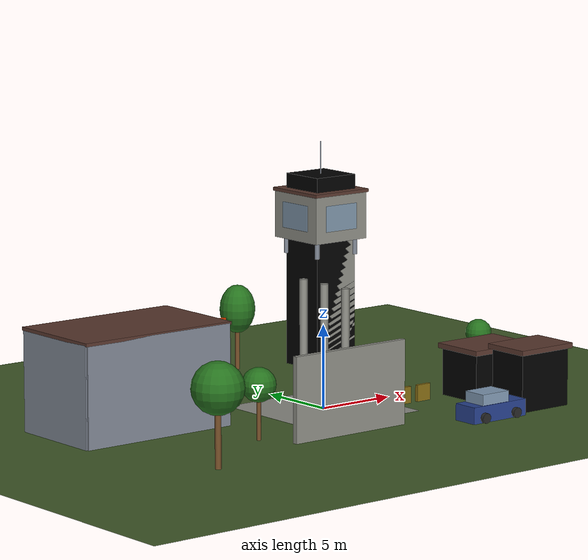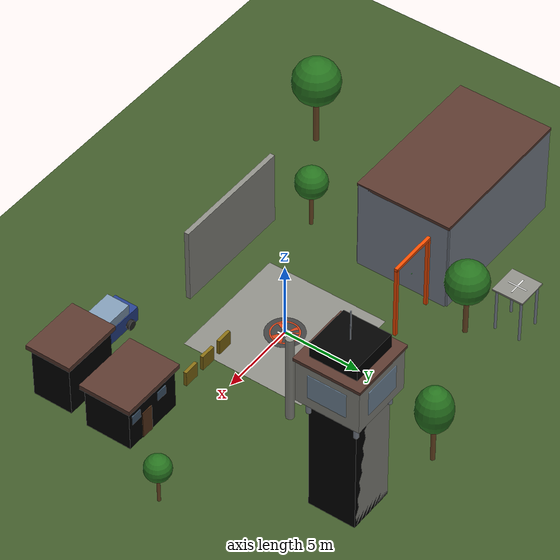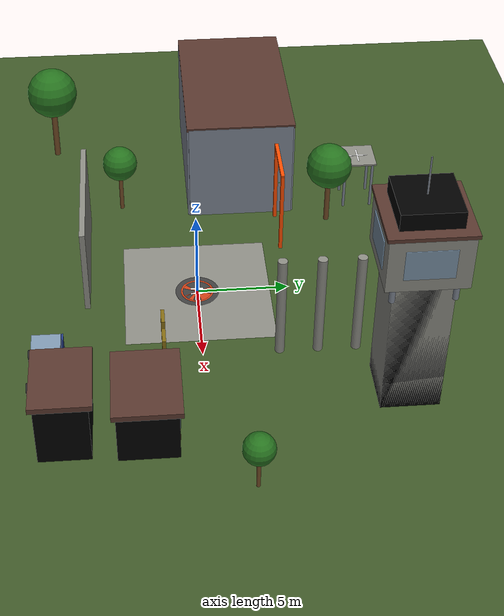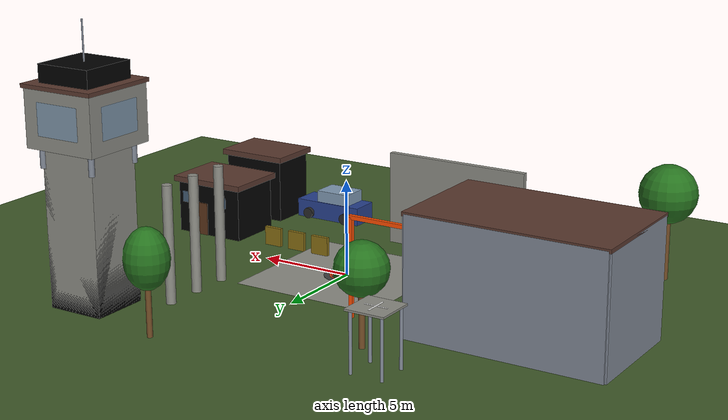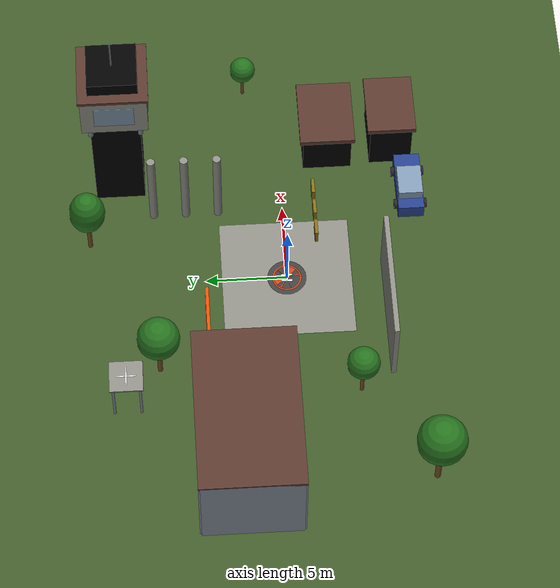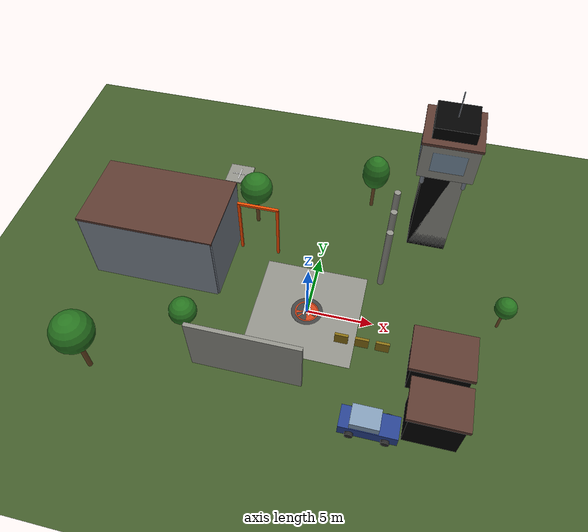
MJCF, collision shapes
<mujoco model="mujoco_drones">

  <!-- Compiler settings (apply globally to all included files)     -->
  <compiler angle="radian" meshdir="../meshes"/>

  <!-- Physics options                                              -->
  <option timestep="0.001" gravity="0 0 -9.81" integrator="RK4"
          cone="pyramidal" impratio="2">
    <flag contact="enable" warmstart="enable"/>
  </option>

  <!-- Solver tuning                                                -->
  <size nconmax="256" njmax="512"/>

  <!-- Visual settings                                              -->
  <visual>
    <headlight diffuse="0.5 0.5 0.5" ambient="0.2 0.2 0.2" specular="0.1 0.1 0.1"/>
    <rgba fog="0.65 0.72 0.82 1"/>
    <map znear="0.01" zfar="500" fogstart="30" fogend="120"
         shadowscale="0.5" force="0.02"/>
    <quality shadowsize="4096"/>
  </visual>

  <!-- Defaults (inherited by all geoms/joints unless overridden)   -->
  <default>
    <joint damping="0.0005"/>
    <geom contype="1" conaffinity="1" condim="3" friction="1 0.5 0.1"/>
  </default>

  <!-- Lighting (global scene lights)                               -->
  <worldbody>
    <!-- Sun: high directional -->
    <light name="sun" directional="true"
           diffuse="0.9 0.87 0.8" specular="0.4 0.38 0.35"
           pos="0 0 20" dir="-0.3 -0.4 -1" castshadow="true"/>

    <!-- Fill light: softer, from the side -->
    <light name="fill" directional="true"
           diffuse="0.35 0.4 0.5" specular="0.05 0.05 0.08"
           pos="15 15 10" dir="-0.5 -0.5 -0.7" castshadow="false"/>

    <!-- Sky hemisphere approximation -->
    <light name="sky" directional="true"
           diffuse="0.25 0.3 0.4" specular="0 0 0"
           pos="0 0 20" dir="0 0 -1" castshadow="false"/>
  </worldbody>

  <!-- Include drone and environment                                -->
  <include file="hummingbird.xml"/>
  <include file="environment.xml"/>

</mujoco>

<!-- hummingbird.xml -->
<mujoco model="hummingbird">

  <asset>
    <mesh name="body" file="hummingbird.obj" scale="1 1 1"/>
    <mesh name="prop_cw"  file="propeller_cw.obj"  scale="0.1 0.1 0.1"/>
    <mesh name="prop_ccw" file="propeller_ccw.obj" scale="0.1 0.1 0.1"/>
  </asset>

  <worldbody>
    <body name="base_link" pos="0 0 1.0">
      <freejoint name="root"/>

      <site name="imu_site" pos="0 0 0" size="0.005"/>

      <!-- LiDAR: horizontal scan plane at drone center -->
      <site name="lidar_site" pos="0 0 -0.02" size="0.005" rgba="0 1 0 0.3"/>

      <!-- Infrared rangefinder: bottom of body, pointing down (-Z) -->
      <site name="infrared_site" pos="0 0 -0.06" euler="180 0 0"
            size="0.003" rgba="1 0 0 0.3"/>

      <!-- Forward-facing RGBD camera -->
      <camera name="drone_camera" pos="0.085 0.085 -0.02"
              xyaxes="0 -1 0 0 0 1" fovy="60"/>

      <inertial pos="0 0 0" mass="0.68"
                diaginertia="0.007 0.007 0.012"/>

      <geom name="body_visual" type="mesh" mesh="body"
            contype="0" conaffinity="0" rgba="0.3 0.3 0.3 1"/>
      <geom name="body_collision" type="box" size="0.05 0.05 0.06"
            rgba="0.3 0.3 0.3 0" mass="0"/>

      <!-- Rotor 0: Front (+X), CW -->
      <body name="rotor_0" pos="0.17 0 0.01">
        <joint name="rotor_0_joint" type="hinge" axis="0 0 1"
               damping="0.00005" frictionloss="0.0001"/>
        <inertial pos="0 0 0" mass="0.009"
                  diaginertia="7.669e-06 7.507e-06 1.755e-07"/>
        <geom name="prop_0" type="mesh" mesh="prop_cw"
              contype="0" conaffinity="0" rgba="1.0 0.2 0.2 0.6"/>
        <site name="thrust_0" pos="0 0 0" size="0.005"/>
      </body>

      <!-- Rotor 1: Left (+Y), CCW -->
      <body name="rotor_1" pos="0 0.17 0.01">
        <joint name="rotor_1_joint" type="hinge" axis="0 0 1"
               damping="0.00005" frictionloss="0.0001"/>
        <inertial pos="0 0 0" mass="0.009"
                  diaginertia="7.669e-06 7.507e-06 1.755e-07"/>
        <geom name="prop_1" type="mesh" mesh="prop_ccw"
              contype="0" conaffinity="0" rgba="0.2 0.4 1.0 0.6"/>
        <site name="thrust_1" pos="0 0 0" size="0.005"/>
      </body>

      <!-- Rotor 2: Back (-X), CW -->
      <body name="rotor_2" pos="-0.17 0 0.01">
        <joint name="rotor_2_joint" type="hinge" axis="0 0 1"
               damping="0.00005" frictionloss="0.0001"/>
        <inertial pos="0 0 0" mass="0.009"
                  diaginertia="7.669e-06 7.507e-06 1.755e-07"/>
        <geom name="prop_2" type="mesh" mesh="prop_cw"
              contype="0" conaffinity="0" rgba="0.2 0.4 1.0 0.6"/>
        <site name="thrust_2" pos="0 0 0" size="0.005"/>
      </body>

      <!-- Rotor 3: Right (-Y), CCW -->
      <body name="rotor_3" pos="0 -0.17 0.01">
        <joint name="rotor_3_joint" type="hinge" axis="0 0 1"
               damping="0.00005" frictionloss="0.0001"/>
        <inertial pos="0 0 0" mass="0.009"
                  diaginertia="7.669e-06 7.507e-06 1.755e-07"/>
        <geom name="prop_3" type="mesh" mesh="prop_ccw"
              contype="0" conaffinity="0" rgba="0.2 0.4 1.0 0.6"/>
        <site name="thrust_3" pos="0 0 0" size="0.005"/>
      </body>
    </body>
  </worldbody>

  <actuator>
    <general name="thrust_0" site="thrust_0"
             gear="0 0 1 0 0 -0.016" ctrlrange="0 6" ctrllimited="true"/>
    <general name="thrust_1" site="thrust_1"
             gear="0 0 1 0 0  0.016" ctrlrange="0 6" ctrllimited="true"/>
    <general name="thrust_2" site="thrust_2"
             gear="0 0 1 0 0 -0.016" ctrlrange="0 6" ctrllimited="true"/>
    <general name="thrust_3" site="thrust_3"
             gear="0 0 1 0 0  0.016" ctrlrange="0 6" ctrllimited="true"/>

    <velocity name="spin_0" joint="rotor_0_joint" kv="0.0001"
              ctrlrange="-838 0" ctrllimited="true"/>
    <velocity name="spin_1" joint="rotor_1_joint" kv="0.0001"
              ctrlrange="0 838" ctrllimited="true"/>
    <velocity name="spin_2" joint="rotor_2_joint" kv="0.0001"
              ctrlrange="-838 0" ctrllimited="true"/>
    <velocity name="spin_3" joint="rotor_3_joint" kv="0.0001"
              ctrlrange="0 838" ctrllimited="true"/>
  </actuator>

  <sensor>
    <accelerometer name="imu_accel" site="imu_site"/>
    <gyro          name="imu_gyro"  site="imu_site"/>
    <framequat     name="orientation" objtype="site" objname="imu_site"/>
    <framepos      name="position"   objtype="site" objname="imu_site"/>
    <framexaxis    name="heading"    objtype="site" objname="imu_site"/>
    <velocimeter   name="linvel"     site="imu_site"/>
    <!-- Magnetometer axes (3-axis heading reference) -->
    <frameyaxis    name="mag_y"      objtype="site" objname="imu_site"/>
    <framezaxis    name="mag_z"      objtype="site" objname="imu_site"/>
  </sensor>

</mujoco>

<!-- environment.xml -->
E (+X)

  Origin (0,0) = landing pad center = drone spawn
-->
<mujoco model="environment">

  <!-- Asset store: textures and materials for the environment      -->
  <asset>
    <!-- Ground -->
    <texture name="ground_grass" type="2d" builtin="checker"
             rgb1="0.28 0.38 0.18" rgb2="0.22 0.32 0.14"
             width="512" height="512" mark="random" markrgb="0.25 0.35 0.16"/>
    <material name="mat_grass" texture="ground_grass" texrepeat="20 20"
              reflectance="0.05" specular="0.05"/>

    <!-- Concrete / asphalt -->
    <texture name="tex_concrete" type="2d" builtin="flat"
             rgb1="0.55 0.55 0.52" rgb2="0.50 0.50 0.48"
             width="256" height="256" mark="random" markrgb="0.48 0.48 0.46"/>
    <material name="mat_concrete" texture="tex_concrete" texrepeat="4 4"
              reflectance="0.1" specular="0.1"/>

    <!-- Landing pad -->
    <texture name="tex_pad" type="2d" builtin="flat"
             rgb1="0.25 0.25 0.25" rgb2="0.20 0.20 0.20"
             width="256" height="256"/>
    <material name="mat_pad" texture="tex_pad" texrepeat="1 1"
              reflectance="0.15" specular="0.2"/>

    <!-- Building walls -->
    <texture name="tex_brick" type="2d" builtin="checker"
             rgb1="0.65 0.35 0.25" rgb2="0.60 0.32 0.22"
             width="128" height="128"/>
    <material name="mat_brick" texture="tex_brick" texrepeat="8 4"
              reflectance="0.05"/>

    <texture name="tex_metal" type="2d" builtin="flat"
             rgb1="0.50 0.53 0.58" rgb2="0.45 0.48 0.52"
             width="128" height="128" mark="random" markrgb="0.42 0.44 0.48"/>
    <material name="mat_metal" texture="tex_metal" texrepeat="6 6"
              reflectance="0.3" specular="0.3"/>

    <!-- Roof -->
    <texture name="tex_roof" type="2d" builtin="flat"
             rgb1="0.35 0.22 0.18" rgb2="0.30 0.18 0.14"
             width="128" height="128"/>
    <material name="mat_roof" texture="tex_roof" texrepeat="4 4"
              reflectance="0.05"/>

    <!-- Barrier (yellow/black) -->
    <texture name="tex_barrier" type="2d" builtin="checker"
             rgb1="0.9 0.7 0.0" rgb2="0.15 0.15 0.15"
             width="64" height="64"/>
    <material name="mat_barrier" texture="tex_barrier" texrepeat="4 1"
              reflectance="0.1"/>

    <!-- Foliage -->
    <material name="mat_trunk"   rgba="0.45 0.30 0.15 1" specular="0.05"/>
    <material name="mat_foliage" rgba="0.15 0.45 0.12 0.9" specular="0.05"/>

    <!-- Window -->
    <material name="mat_window" rgba="0.5 0.65 0.8 0.6" specular="0.6"
              reflectance="0.4"/>

    <!-- Landing pad markings -->
    <material name="mat_marking" rgba="1.0 1.0 1.0 0.9"/>
    <material name="mat_circle"  rgba="1.0 0.3 0.1 0.8"/>
  </asset>

  <worldbody>

    <!-- Ground plane                                                 -->
    <geom name="ground" type="plane" size="50 50 0.1"
          material="mat_grass" contype="1" conaffinity="1"/>

    <!-- Concrete apron around landing area -->
    <geom name="apron" type="box" pos="0 0 0.001" size="4 4 0.001"
          material="mat_concrete" contype="1" conaffinity="1"/>

    <!-- Landing Pad (centered at origin)                             -->
    <!-- Visual-only markings on top of the apron.                    -->
    <body name="landing_pad" pos="0 0 0.003">
      <!-- Pad surface -->
      <geom name="pad_base" type="cylinder" size="1.2 0.002"
            material="mat_pad" contype="0" conaffinity="0"/>

      <!-- Circle marking -->
      <geom name="pad_ring" type="cylinder" size="0.9 0.003" pos="0 0 0.001"
            material="mat_circle" contype="0" conaffinity="0"/>
      <geom name="pad_inner" type="cylinder" size="0.8 0.003" pos="0 0 0.001"
            material="mat_pad" contype="0" conaffinity="0"/>

      <!-- "H" marking (two vertical bars + crossbar) -->
      <geom name="h_left"  type="box" size="0.06 0.35 0.003" pos="-0.2 0 0.002"
            material="mat_marking" contype="0" conaffinity="0"/>
      <geom name="h_right" type="box" size="0.06 0.35 0.003" pos="0.2 0 0.002"
            material="mat_marking" contype="0" conaffinity="0"/>
      <geom name="h_cross" type="box" size="0.2 0.06 0.003" pos="0 0 0.002"
            material="mat_marking" contype="0" conaffinity="0"/>

      <!-- Directional arrow (points +X = North on pad) -->
      <geom name="arrow_shaft" type="box" size="0.03 0.25 0.003" pos="0 0.55 0.002"
            material="mat_marking" contype="0" conaffinity="0"/>
      <site name="pad_center" pos="0 0 0.01" size="0.02" rgba="1 0 0 0"/>
    </body>

    <!-- Warehouse (large metal building, west side)                  -->
    <!-- Collision = one box.  Visual = walls + roof.                 -->
    <body name="warehouse" pos="-12 3 0">
      <!-- Collision hull (single box, invisible) -->
      <geom name="warehouse_col" type="box" size="5 3 3" pos="0 0 3"
            contype="1" conaffinity="1" rgba="0 0 0 0"/>

      <!-- Visual walls -->
      <geom name="wh_front" type="box" size="5 0.1 3" pos="0 3 3"
            material="mat_metal" contype="0" conaffinity="0"/>
      <geom name="wh_back" type="box" size="5 0.1 3" pos="0 -3 3"
            material="mat_metal" contype="0" conaffinity="0"/>
      <geom name="wh_left" type="box" size="0.1 3 3" pos="-5 0 3"
            material="mat_metal" contype="0" conaffinity="0"/>
      <geom name="wh_right" type="box" size="0.1 3 3" pos="5 0 3"
            material="mat_metal" contype="0" conaffinity="0"/>
      <!-- Roof -->
      <geom name="wh_roof" type="box" size="5.1 3.1 0.1" pos="0 0 6"
            material="mat_roof" contype="0" conaffinity="0"/>
    </body>

    <!-- Control Tower (tall narrow, northeast)                       -->
    <body name="tower" pos="8 10 0">
      <!-- Collision hull -->
      <geom name="tower_col" type="box" size="1.5 1.5 6" pos="0 0 6"
            contype="1" conaffinity="1" rgba="0 0 0 0"/>

      <!-- Base structure -->
      <geom name="tower_base" type="box" size="1.5 1.5 4" pos="0 0 4"
            material="mat_concrete" contype="0" conaffinity="0"/>

      <!-- Observation deck (wider) -->
      <geom name="tower_deck" type="box" size="2.0 2.0 1.5" pos="0 0 9.5"
            material="mat_concrete" contype="0" conaffinity="0"/>

      <!-- Deck supports -->
      <geom name="tower_support_1" type="cylinder" size="0.15 1" pos="1.5 1.5 8"
            material="mat_metal" contype="0" conaffinity="0"/>
      <geom name="tower_support_2" type="cylinder" size="0.15 1" pos="-1.5 1.5 8"
            material="mat_metal" contype="0" conaffinity="0"/>
      <geom name="tower_support_3" type="cylinder" size="0.15 1" pos="1.5 -1.5 8"
            material="mat_metal" contype="0" conaffinity="0"/>
      <geom name="tower_support_4" type="cylinder" size="0.15 1" pos="-1.5 -1.5 8"
            material="mat_metal" contype="0" conaffinity="0"/>

      <!-- Windows (glass) -->
      <geom name="tower_win_n" type="box" size="1.2 0.05 0.8" pos="0 2.0 9.5"
            material="mat_window" contype="0" conaffinity="0"/>
      <geom name="tower_win_s" type="box" size="1.2 0.05 0.8" pos="0 -2.0 9.5"
            material="mat_window" contype="0" conaffinity="0"/>
      <geom name="tower_win_e" type="box" size="0.05 1.2 0.8" pos="2.0 0 9.5"
            material="mat_window" contype="0" conaffinity="0"/>
      <geom name="tower_win_w" type="box" size="0.05 1.2 0.8" pos="-2.0 0 9.5"
            material="mat_window" contype="0" conaffinity="0"/>

      <!-- Roof -->
      <geom name="tower_roof" type="box" size="2.1 2.1 0.1" pos="0 0 11"
            material="mat_roof" contype="0" conaffinity="0"/>

      <!-- Antenna -->
      <geom name="antenna" type="cylinder" size="0.04 1.5" pos="0 0 12.5"
            material="mat_metal" contype="0" conaffinity="0"/>
    </body>

    <!-- Houses (two small residential buildings, east side)          -->
    <body name="house_1" pos="10 -3 0">
      <geom name="house1_col" type="box" size="2 1.5 1.5" pos="0 0 1.5"
            contype="1" conaffinity="1" rgba="0 0 0 0"/>
      <geom name="house1_walls" type="box" size="2 1.5 1.5" pos="0 0 1.5"
            material="mat_brick" contype="0" conaffinity="0"/>
      <geom name="house1_roof" type="box" size="2.2 1.7 0.15" pos="0 0 3.0"
            material="mat_roof" contype="0" conaffinity="0"/>
      <!-- Door -->
      <geom name="house1_door" type="box" size="0.4 0.05 0.9" pos="0.5 1.5 0.9"
            rgba="0.35 0.2 0.1 1" contype="0" conaffinity="0"/>
      <!-- Windows -->
      <geom name="house1_win1" type="box" size="0.35 0.05 0.3" pos="-0.8 1.5 2.0"
            material="mat_window" contype="0" conaffinity="0"/>
      <geom name="house1_win2" type="box" size="0.35 0.05 0.3" pos="1.4 1.5 2.0"
            material="mat_window" contype="0" conaffinity="0"/>
    </body>

    <body name="house_2" pos="10 -7 0">
      <geom name="house2_col" type="box" size="1.8 1.3 1.8" pos="0 0 1.8"
            contype="1" conaffinity="1" rgba="0 0 0 0"/>
      <geom name="house2_walls" type="box" size="1.8 1.3 1.8" pos="0 0 1.8"
            material="mat_brick" contype="0" conaffinity="0"/>
      <geom name="house2_roof" type="box" size="2.0 1.5 0.15" pos="0 0 3.6"
            material="mat_roof" contype="0" conaffinity="0"/>
    </body>

    <!-- Barriers (yellow/black, obstruction course near pad)         -->
    <body name="barriers" pos="3 -2 0">
      <geom name="barrier_1" type="box" size="0.5 0.1 0.5" pos="0 0 0.5"
            material="mat_barrier" contype="1" conaffinity="1"/>
      <geom name="barrier_2" type="box" size="0.5 0.1 0.5" pos="1.5 0 0.5"
            material="mat_barrier" contype="1" conaffinity="1"/>
      <geom name="barrier_3" type="box" size="0.5 0.1 0.5" pos="3.0 0 0.5"
            material="mat_barrier" contype="1" conaffinity="1"/>
    </body>

    <!-- Tall barrier wall (fly-over challenge) -->
    <body name="wall" pos="-3 -6 0">
      <geom name="wall_main" type="box" size="4 0.15 2.5" pos="0 0 2.5"
            material="mat_concrete" contype="1" conaffinity="1"/>
    </body>

    <!-- Pillars / columns (fly-between course)                       -->
    <body name="pillar_1" pos="5 4 0">
      <geom name="pillar1" type="cylinder" size="0.25 3" pos="0 0 3"
            material="mat_concrete" contype="1" conaffinity="1"/>
    </body>
    <body name="pillar_2" pos="5 6 0">
      <geom name="pillar2" type="cylinder" size="0.25 3" pos="0 0 3"
            material="mat_concrete" contype="1" conaffinity="1"/>
    </body>
    <body name="pillar_3" pos="5 8 0">
      <geom name="pillar3" type="cylinder" size="0.25 3" pos="0 0 3"
            material="mat_concrete" contype="1" conaffinity="1"/>
    </body>

    <!-- Gate (fly-through) -->
    <body name="gate" pos="-5 5 0">
      <geom name="gate_left" type="box" size="0.1 0.1 2.5" pos="-1.5 0 2.5"
            rgba="1.0 0.3 0.0 1" contype="1" conaffinity="1"/>
      <geom name="gate_right" type="box" size="0.1 0.1 2.5" pos="1.5 0 2.5"
            rgba="1.0 0.3 0.0 1" contype="1" conaffinity="1"/>
      <geom name="gate_top" type="box" size="1.6 0.1 0.1" pos="0 0 5.0"
            rgba="1.0 0.3 0.0 1" contype="1" conaffinity="1"/>
      <site name="gate_center" pos="0 0 3.5" size="0.03" rgba="0 1 0 0.5"/>
    </body>

    <!-- Trees (visual only, no collision — the drone flies through)  -->
    <body name="tree_1" pos="-8 -4 0">
      <geom name="trunk_1" type="cylinder" size="0.12 1.2" pos="0 0 1.2"
            material="mat_trunk" contype="0" conaffinity="0"/>
      <geom name="leaves_1" type="sphere" size="1.0" pos="0 0 3.2"
            material="mat_foliage" contype="0" conaffinity="0"/>
    </body>

    <body name="tree_2" pos="-6 8 0">
      <geom name="trunk_2" type="cylinder" size="0.15 1.5" pos="0 0 1.5"
            material="mat_trunk" contype="0" conaffinity="0"/>
      <geom name="leaves_2" type="sphere" size="1.3" pos="0 0 3.8"
            material="mat_foliage" contype="0" conaffinity="0"/>
    </body>

    <body name="tree_3" pos="14 2 0">
      <geom name="trunk_3" type="cylinder" size="0.1 1.0" pos="0 0 1.0"
            material="mat_trunk" contype="0" conaffinity="0"/>
      <geom name="leaves_3" type="sphere" size="0.8" pos="0 0 2.5"
            material="mat_foliage" contype="0" conaffinity="0"/>
    </body>

    <body name="tree_4" pos="3 12 0">
      <geom name="trunk_4" type="cylinder" size="0.14 1.4" pos="0 0 1.4"
            material="mat_trunk" contype="0" conaffinity="0"/>
      <geom name="leaves_4" type="ellipsoid" size="1.1 1.1 1.5" pos="0 0 3.8"
            material="mat_foliage" contype="0" conaffinity="0"/>
    </body>

    <body name="tree_5" pos="-14 -8 0">
      <geom name="trunk_5" type="cylinder" size="0.18 1.8" pos="0 0 1.8"
            material="mat_trunk" contype="0" conaffinity="0"/>
      <geom name="leaves_5" type="sphere" size="1.5" pos="0 0 4.5"
            material="mat_foliage" contype="0" conaffinity="0"/>
    </body>

    <!-- Parked vehicle (simple box car, southeast)                   -->
    <body name="car" pos="6 -8 0">
      <!-- Chassis -->
      <geom name="car_body" type="box" size="2.0 0.8 0.5" pos="0 0 0.5"
            rgba="0.15 0.25 0.55 1" contype="1" conaffinity="1"/>
      <!-- Cabin -->
      <geom name="car_cabin" type="box" size="1.0 0.75 0.45" pos="-0.3 0 1.2"
            rgba="0.5 0.6 0.7 0.6" contype="1" conaffinity="1"/>
      <!-- Wheels -->
      <geom name="wheel_fl" type="cylinder" size="0.3 0.12" pos="1.2 0.9 0.3"
            euler="1.5708 0 0" rgba="0.15 0.15 0.15 1" contype="0" conaffinity="0"/>
      <geom name="wheel_fr" type="cylinder" size="0.3 0.12" pos="1.2 -0.9 0.3"
            euler="1.5708 0 0" rgba="0.15 0.15 0.15 1" contype="0" conaffinity="0"/>
      <geom name="wheel_rl" type="cylinder" size="0.3 0.12" pos="-1.2 0.9 0.3"
            euler="1.5708 0 0" rgba="0.15 0.15 0.15 1" contype="0" conaffinity="0"/>
      <geom name="wheel_rr" type="cylinder" size="0.3 0.12" pos="-1.2 -0.9 0.3"
            euler="1.5708 0 0" rgba="0.15 0.15 0.15 1" contype="0" conaffinity="0"/>
    </body>

    <!-- Elevated platform (precision landing target)                 -->
    <body name="platform" pos="-8 10 0">
      <!-- Support legs -->
      <geom name="plat_leg1" type="cylinder" size="0.08 1.5" pos="0.8 0.8 1.5"
            material="mat_metal" contype="1" conaffinity="1"/>
      <geom name="plat_leg2" type="cylinder" size="0.08 1.5" pos="-0.8 0.8 1.5"
            material="mat_metal" contype="1" conaffinity="1"/>
      <geom name="plat_leg3" type="cylinder" size="0.08 1.5" pos="0.8 -0.8 1.5"
            material="mat_metal" contype="1" conaffinity="1"/>
      <geom name="plat_leg4" type="cylinder" size="0.08 1.5" pos="-0.8 -0.8 1.5"
            material="mat_metal" contype="1" conaffinity="1"/>
      <!-- Platform surface -->
      <geom name="plat_top" type="box" size="1.0 1.0 0.05" pos="0 0 3.0"
            material="mat_concrete" contype="1" conaffinity="1"/>
      <!-- Landing cross -->
      <geom name="plat_x1" type="box" size="0.6 0.04 0.003" pos="0 0 3.053"
            material="mat_marking" contype="0" conaffinity="0"/>
      <geom name="plat_x2" type="box" size="0.04 0.6 0.003" pos="0 0 3.053"
            material="mat_marking" contype="0" conaffinity="0"/>
      <site name="platform_center" pos="0 0 3.06" size="0.02" rgba="0 1 0 0"/>
    </body>

  </worldbody>

</mujoco>
